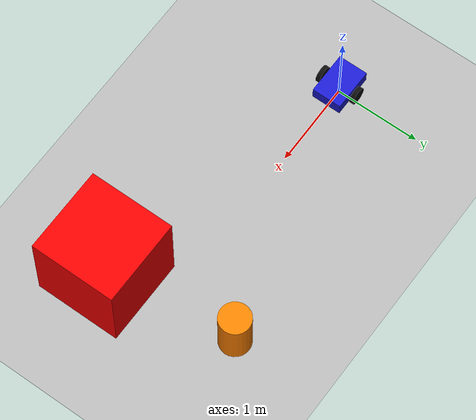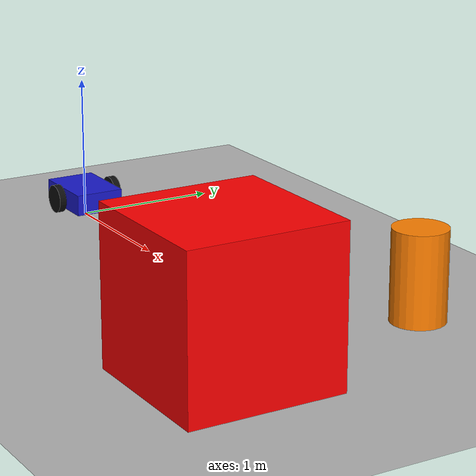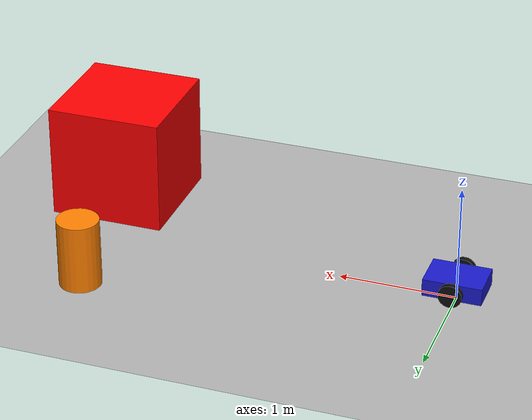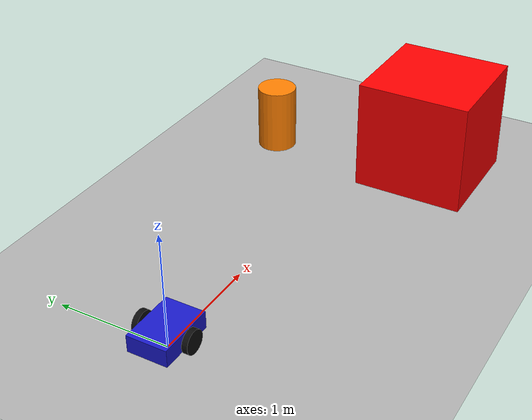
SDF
<?xml version="1.0" ?>
<sdf version="1.8">
  <world name="my_clip_robot_world">

    <!-- World systems -->
    <plugin
      filename="gz-sim-physics-system"
      name="gz::sim::systems::Physics"/>
    <plugin
      filename="gz-sim-user-commands-system"
      name="gz::sim::systems::UserCommands"/>
    <plugin
      filename="gz-sim-scene-broadcaster-system"
      name="gz::sim::systems::SceneBroadcaster"/>
    <plugin
      filename="gz-sim-sensors-system"
      name="gz::sim::systems::Sensors">
      <render_engine>ogre2</render_engine>
    </plugin>

    <!-- Light -->
    <light type="directional" name="sun">
      <cast_shadows>true</cast_shadows>
      <pose>0 0 10 0 0 0</pose>
      <diffuse>0.8 0.8 0.8 1</diffuse>
      <specular>0.2 0.2 0.2 1</specular>
      <direction>-0.5 0.1 -0.9</direction>
    </light>

    <!-- Ground -->
    <model name="ground_plane">
      <static>true</static>
      <link name="link">
        <collision name="collision">
          <geometry>
            <plane>
              <normal>0 0 1</normal>
              <size>20 20</size>
            </plane>
          </geometry>
        </collision>
        <visual name="visual">
          <geometry>
            <plane>
              <normal>0 0 1</normal>
              <size>20 20</size>
            </plane>
          </geometry>
          <material>
            <ambient>0.7 0.7 0.7 1</ambient>
            <diffuse>0.7 0.7 0.7 1</diffuse>
          </material>
        </visual>
      </link>
    </model>

    <!-- Red box target -->
    <model name="red_box">
      <static>true</static>
      <pose>3.2 -0.7 0.5 0 0 0</pose>
      <link name="link">
        <collision name="collision">
          <geometry>
            <box>
              <size>1 1 1</size>
            </box>
          </geometry>
        </collision>
        <visual name="visual">
          <geometry>
            <box>
              <size>1 1 1</size>
            </box>
          </geometry>
          <material>
            <ambient>1 0 0 1</ambient>
            <diffuse>1 0 0 1</diffuse>
          </material>
        </visual>
      </link>
    </model>

    <!-- Cone obstacle -->
    <model name="cone">
      <static>true</static>
      <pose>3.0 0.8 0.3 0 0 0</pose>
      <link name="link">
        <collision name="collision">
          <geometry>
            <cylinder>
              <radius>0.18</radius>
              <length>0.6</length>
            </cylinder>
          </geometry>
        </collision>
        <visual name="visual">
          <geometry>
            <cylinder>
              <radius>0.18</radius>
              <length>0.6</length>
            </cylinder>
          </geometry>
          <material>
            <ambient>1 0.5 0 1</ambient>
            <diffuse>1 0.5 0 1</diffuse>
          </material>
        </visual>
      </link>
    </model>

    <!-- Simple differential drive robot -->
    <model name="clip_bot">
      <pose>0 0 0.15 0 0 0</pose>

      <!-- chassis -->
      <link name="chassis">
        <inertial>
          <mass>3.0</mass>
          <inertia>
            <ixx>0.10</ixx>
            <iyy>0.10</iyy>
            <izz>0.10</izz>
            <ixy>0.0</ixy>
            <ixz>0.0</ixz>
            <iyz>0.0</iyz>
          </inertia>
        </inertial>

        <collision name="chassis_collision">
          <geometry>
            <box>
              <size>0.5 0.35 0.15</size>
            </box>
          </geometry>
        </collision>

        <visual name="chassis_visual">
          <geometry>
            <box>
              <size>0.5 0.35 0.15</size>
            </box>
          </geometry>
          <material>
            <ambient>0.1 0.1 0.8 1</ambient>
            <diffuse>0.1 0.1 0.8 1</diffuse>
          </material>
        </visual>

        <!-- Robot camera -->
        <sensor name="rgbd_camera" type="rgbd_camera">
          <pose>0.18 0 0.22 0 0 0</pose>
          <always_on>true</always_on>
          <update_rate>10</update_rate>
          <topic>/rgbd_camera</topic>

          <camera>
            <horizontal_fov>1.047</horizontal_fov>
            <image>
              <width>640</width>
              <height>480</height>
              <format>R8G8B8</format>
            </image>
            <clip>
              <near>0.1</near>
              <far>100</far>
            </clip>
          </camera>

          <depth_camera>
            <clip>
              <near>0.1</near>
              <far>10.0</far>
            </clip>
          </depth_camera>

          <visualize>true</visualize>
        </sensor>
      </link>

      <!-- left wheel -->
      <link name="left_wheel">
        <pose>0 0.22 0 1.5708 0 0</pose>
        <inertial>
          <mass>0.5</mass>
          <inertia>
            <ixx>0.01</ixx>
            <iyy>0.01</iyy>
            <izz>0.01</izz>
            <ixy>0.0</ixy>
            <ixz>0.0</ixz>
            <iyz>0.0</iyz>
          </inertia>
        </inertial>
        <collision name="left_wheel_collision">
          <geometry>
            <cylinder>
              <radius>0.1</radius>
              <length>0.05</length>
            </cylinder>
          </geometry>
        </collision>
        <visual name="left_wheel_visual">
          <geometry>
            <cylinder>
              <radius>0.1</radius>
              <length>0.05</length>
            </cylinder>
          </geometry>
          <material>
            <ambient>0.05 0.05 0.05 1</ambient>
            <diffuse>0.05 0.05 0.05 1</diffuse>
          </material>
        </visual>
      </link>

      <!-- right wheel -->
      <link name="right_wheel">
        <pose>0 -0.22 0 1.5708 0 0</pose>
        <inertial>
          <mass>0.5</mass>
          <inertia>
            <ixx>0.01</ixx>
            <iyy>0.01</iyy>
            <izz>0.01</izz>
            <ixy>0.0</ixy>
            <ixz>0.0</ixz>
            <iyz>0.0</iyz>
          </inertia>
        </inertial>
        <collision name="right_wheel_collision">
          <geometry>
            <cylinder>
              <radius>0.1</radius>
              <length>0.05</length>
            </cylinder>
          </geometry>
        </collision>
        <visual name="right_wheel_visual">
          <geometry>
            <cylinder>
              <radius>0.1</radius>
              <length>0.05</length>
            </cylinder>
          </geometry>
          <material>
            <ambient>0.05 0.05 0.05 1</ambient>
            <diffuse>0.05 0.05 0.05 1</diffuse>
          </material>
        </visual>
      </link>

      <!-- caster -->
      <link name="caster">
        <pose>-0.18 0 0 0 0 0</pose>
        <inertial>
          <mass>0.2</mass>
          <inertia>
            <ixx>0.001</ixx>
            <iyy>0.001</iyy>
            <izz>0.001</izz>
            <ixy>0.0</ixy>
            <ixz>0.0</ixz>
            <iyz>0.0</iyz>
          </inertia>
        </inertial>
        <collision name="caster_collision">
          <geometry>
            <sphere>
              <radius>0.05</radius>
            </sphere>
          </geometry>
        </collision>
        <visual name="caster_visual">
          <geometry>
            <sphere>
              <radius>0.05</radius>
            </sphere>
          </geometry>
        </visual>
      </link>

      <!-- joints -->
        <joint name="left_wheel_joint" type="revolute">
    <parent>chassis</parent>
    <child>left_wheel</child>
    <axis>
        <xyz>0 1 0</xyz>
        <limit>
            <lower>-1000000</lower>
            <upper>1000000</upper>
            <effort>1000000</effort>
            <velocity>1000</velocity>
        </limit>
    </axis>
    </joint>

    <joint name="right_wheel_joint" type="revolute">
    <parent>chassis</parent>
    <child>right_wheel</child>
    <axis>
        <xyz>0 1 0</xyz>
        <limit>
            <lower>-1000000</lower>
            <upper>1000000</upper>
            <effort>1000000</effort>
            <velocity>1000</velocity>
        </limit>
    </axis>
    </joint>

      <joint name="caster_joint" type="ball">
        <parent>chassis</parent>
        <child>caster</child>
      </joint>

      <!-- Differential drive system -->
      <plugin
        filename="gz-sim-diff-drive-system"
        name="gz::sim::systems::DiffDrive">
        <left_joint>left_wheel_joint</left_joint>
        <right_joint>right_wheel_joint</right_joint>
        <wheel_separation>0.44</wheel_separation>
        <wheel_radius>0.10</wheel_radius>
        <topic>/cmd_vel</topic>
        <odom_topic>/odom</odom_topic>
        <frame_id>odom</frame_id>
        <child_frame_id>clip_bot/chassis</child_frame_id>
      </plugin>
    </model>

  </world>
</sdf>
